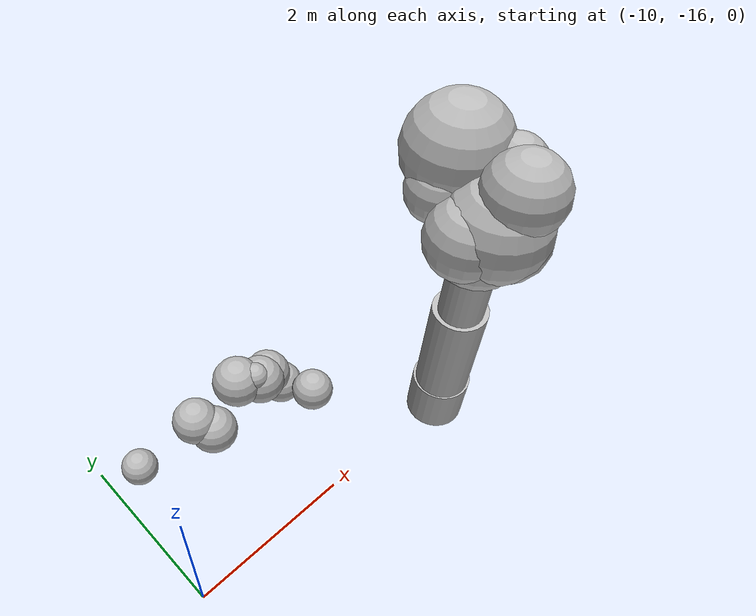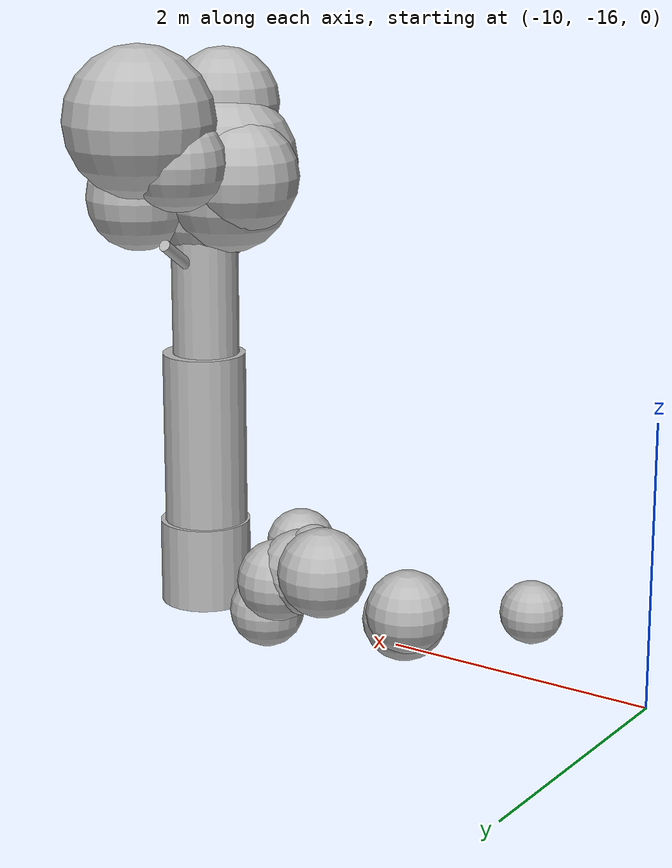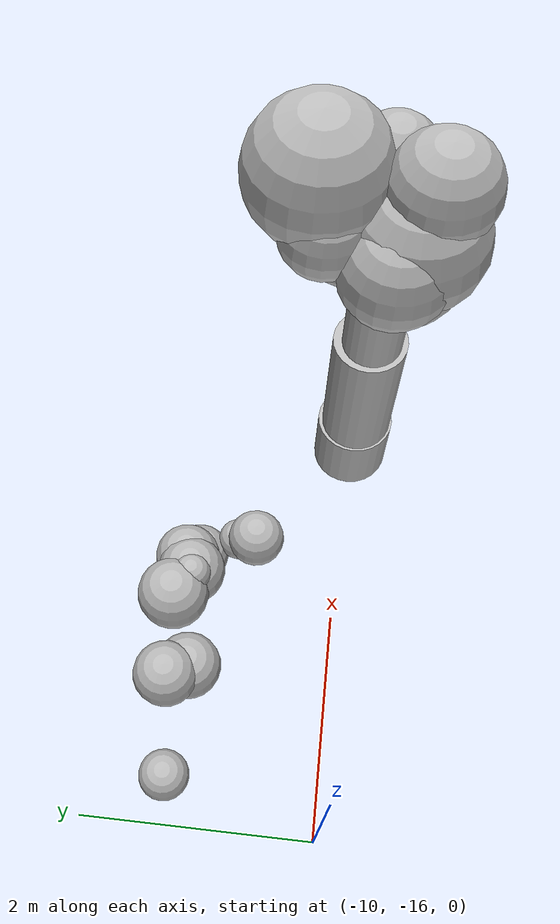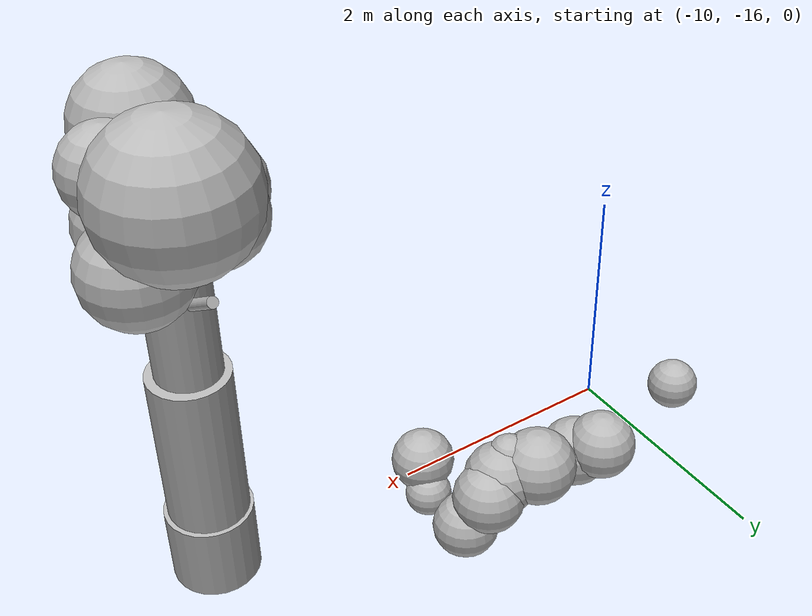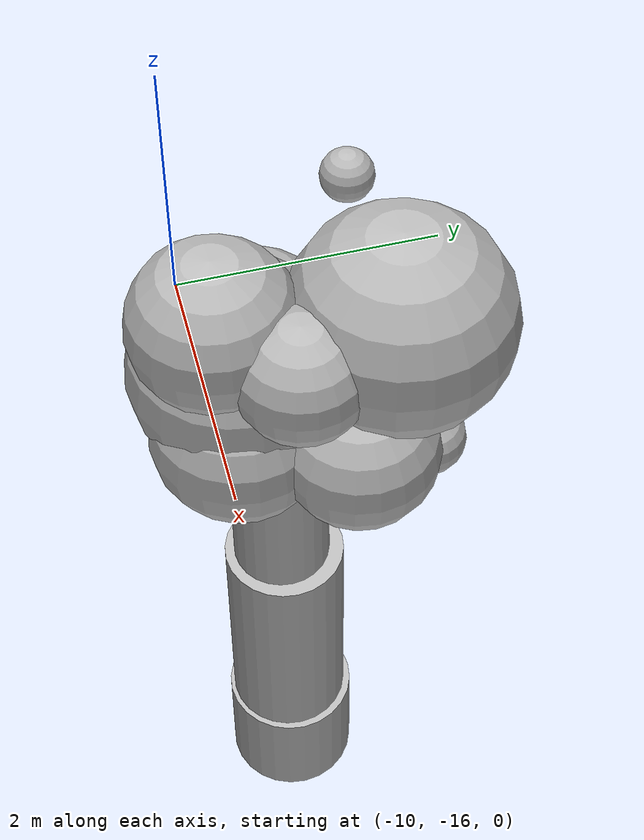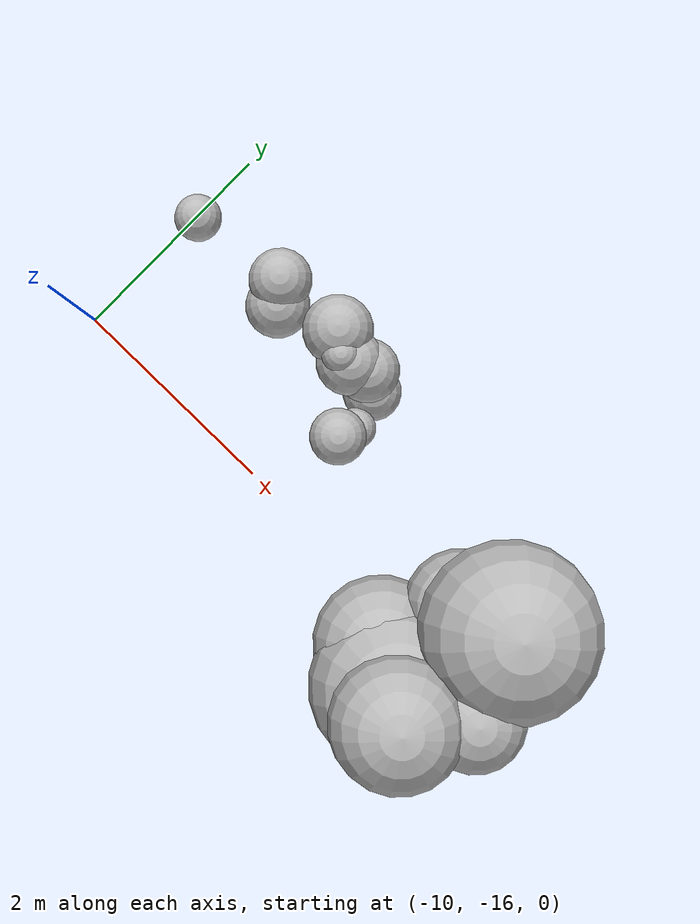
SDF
<sdf version="1.6">
 <world name="default">
  <model name="bush_9">
   <static>true</static>
   <pose>-6.2213 -16.0436 0 0 0 0</pose>
   <link name="trunk">
    <pose>0 0 1.5000 0 0 0</pose>
    <collision name="trunk_c">
     <geometry><cylinder><radius>0.3500</radius><length>3.0000</length></cylinder></geometry>
    </collision>
   </link>
   <link name="trunk_v0">
    <pose>-0.0011 -0.0010 0.3100 0 0 0</pose>
    <visual name="trunk_v0_v">
     <geometry><cylinder><radius>0.3448</radius><length>0.6448</length></cylinder></geometry>
     <material>
      <script>
       <uri>model://bushfire/materials/scripts</uri>
       <uri>model://bushfire/materials/textures</uri>
       <name>Bushfire/CharBark</name>
      </script>
     </material>
    </visual>
   </link>
   <link name="trunk_v1">
    <pose>-0.0077 -0.0074 1.2700 0 0 0</pose>
    <visual name="trunk_v1_v">
     <geometry><cylinder><radius>0.3150</radius><length>1.3520</length></cylinder></geometry>
     <material>
      <script>
       <uri>model://bushfire/materials/scripts</uri>
       <uri>model://bushfire/materials/textures</uri>
       <name>Bushfire/BarkStringy</name>
      </script>
     </material>
    </visual>
   </link>
   <link name="trunk_v2">
    <pose>-0.0194 -0.0188 2.4600 0 0 0</pose>
    <visual name="trunk_v2_v">
     <geometry><cylinder><radius>0.2520</radius><length>1.1232</length></cylinder></geometry>
     <material>
      <script>
       <uri>model://bushfire/materials/scripts</uri>
       <uri>model://bushfire/materials/textures</uri>
       <name>Bushfire/BarkStringy</name>
      </script>
     </material>
    </visual>
   </link>
   <link name="branch0">
    <pose>-0.0294 0.2502 2.6881 0 1.0077 1.6876</pose>
    <visual name="branch0_v">
     <geometry><cylinder><radius>0.0431</radius><length>0.5957</length></cylinder></geometry>
     <material>
      <script>
       <uri>model://bushfire/materials/scripts</uri>
       <uri>model://bushfire/materials/textures</uri>
       <name>Bushfire/BarkStringy</name>
      </script>
     </material>
    </visual>
   </link>
   <link name="branch1">
    <pose>-0.1557 -0.0891 2.7045 0 0.6567 3.6614</pose>
    <visual name="branch1_v">
     <geometry><cylinder><radius>0.0320</radius><length>0.5877</length></cylinder></geometry>
     <material>
      <script>
       <uri>model://bushfire/materials/scripts</uri>
       <uri>model://bushfire/materials/textures</uri>
       <name>Bushfire/BarkStringy</name>
      </script>
     </material>
    </visual>
   </link>
   <link name="branch2">
    <pose>0.0171 -0.1958 2.8913 0 0.6283 4.7997</pose>
    <visual name="branch2_v">
     <geometry><cylinder><radius>0.0427</radius><length>0.6688</length></cylinder></geometry>
     <material>
      <script>
       <uri>model://bushfire/materials/scripts</uri>
       <uri>model://bushfire/materials/textures</uri>
       <name>Bushfire/BarkStringy</name>
      </script>
     </material>
    </visual>
   </link>
   <link name="branch3">
    <pose>0.1507 0.0560 2.7982 0 0.6104 6.6388</pose>
    <visual name="branch3_v">
     <geometry><cylinder><radius>0.0397</radius><length>0.5611</length></cylinder></geometry>
     <material>
      <script>
       <uri>model://bushfire/materials/scripts</uri>
       <uri>model://bushfire/materials/textures</uri>
       <name>Bushfire/BarkStringy</name>
      </script>
     </material>
    </visual>
   </link>
   <link name="foliage0">
    <pose>0.2075 0.5361 3.6046 0 0 0</pose>
    <visual name="foliage0_v">
     <geometry><sphere><radius>0.3827</radius></sphere></geometry>
     <material>
      <script>
       <uri>model://bushfire/materials/scripts</uri>
       <uri>model://bushfire/materials/textures</uri>
       <name>Bushfire/Foliage1</name>
      </script>
     </material>
    </visual>
   </link>
   <link name="foliage1">
    <pose>-0.3396 -0.0533 3.3034 0 0 0</pose>
    <visual name="foliage1_v">
     <geometry><sphere><radius>0.4316</radius></sphere></geometry>
     <material>
      <script>
       <uri>model://bushfire/materials/scripts</uri>
       <uri>model://bushfire/materials/textures</uri>
       <name>Bushfire/Foliage0</name>
      </script>
     </material>
    </visual>
   </link>
   <link name="foliage2">
    <pose>0.0097 -0.1054 3.0300 0 0 0</pose>
    <visual name="foliage2_v">
     <geometry><sphere><radius>0.4086</radius></sphere></geometry>
     <material>
      <script>
       <uri>model://bushfire/materials/scripts</uri>
       <uri>model://bushfire/materials/textures</uri>
       <name>Bushfire/Foliage2</name>
      </script>
     </material>
    </visual>
   </link>
   <link name="foliage3">
    <pose>0.3081 0.0338 3.7165 0 0 0</pose>
    <visual name="foliage3_v">
     <geometry><sphere><radius>0.3260</radius></sphere></geometry>
     <material>
      <script>
       <uri>model://bushfire/materials/scripts</uri>
       <uri>model://bushfire/materials/textures</uri>
       <name>Bushfire/Foliage2</name>
      </script>
     </material>
    </visual>
   </link>
   <link name="foliage4">
    <pose>-0.1671 0.4657 3.4507 0 0 0</pose>
    <visual name="foliage4_v">
     <geometry><sphere><radius>0.3527</radius></sphere></geometry>
     <material>
      <script>
       <uri>model://bushfire/materials/scripts</uri>
       <uri>model://bushfire/materials/textures</uri>
       <name>Bushfire/Foliage1</name>
      </script>
     </material>
    </visual>
   </link>
   <link name="foliage5">
    <pose>-0.1023 -0.1757 3.3690 0 0 0</pose>
    <visual name="foliage5_v">
     <geometry><sphere><radius>0.5453</radius></sphere></geometry>
     <material>
      <script>
       <uri>model://bushfire/materials/scripts</uri>
       <uri>model://bushfire/materials/textures</uri>
       <name>Bushfire/Foliage2</name>
      </script>
     </material>
    </visual>
   </link>
   <link name="foliage6">
    <pose>0.0902 -0.2233 3.1250 0 0 0</pose>
    <visual name="foliage6_v">
     <geometry><sphere><radius>0.4403</radius></sphere></geometry>
     <material>
      <script>
       <uri>model://bushfire/materials/scripts</uri>
       <uri>model://bushfire/materials/textures</uri>
       <name>Bushfire/Foliage1</name>
      </script>
     </material>
    </visual>
   </link>
   <link name="foliage7">
    <pose>0.3355 0.3006 3.1349 0 0 0</pose>
    <visual name="foliage7_v">
     <geometry><sphere><radius>0.3941</radius></sphere></geometry>
     <material>
      <script>
       <uri>model://bushfire/materials/scripts</uri>
       <uri>model://bushfire/materials/textures</uri>
       <name>Bushfire/Foliage0</name>
      </script>
     </material>
    </visual>
   </link>
   <link name="foliage8">
    <pose>0.1091 0.5516 3.7346 0 0 0</pose>
    <visual name="foliage8_v">
     <geometry><sphere><radius>0.5568</radius></sphere></geometry>
     <material>
      <script>
       <uri>model://bushfire/materials/scripts</uri>
       <uri>model://bushfire/materials/textures</uri>
       <name>Bushfire/Foliage2</name>
      </script>
     </material>
    </visual>
   </link>
   <link name="foliage9">
    <pose>-0.1821 -0.1018 3.2007 0 0 0</pose>
    <visual name="foliage9_v">
     <geometry><sphere><radius>0.4803</radius></sphere></geometry>
     <material>
      <script>
       <uri>model://bushfire/materials/scripts</uri>
       <uri>model://bushfire/materials/textures</uri>
       <name>Bushfire/Foliage1</name>
      </script>
     </material>
    </visual>
   </link>
   <link name="foliage10">
    <pose>-0.0091 -0.2942 3.7985 0 0 0</pose>
    <visual name="foliage10_v">
     <geometry><sphere><radius>0.4166</radius></sphere></geometry>
     <material>
      <script>
       <uri>model://bushfire/materials/scripts</uri>
       <uri>model://bushfire/materials/textures</uri>
       <name>Bushfire/Foliage0</name>
      </script>
     </material>
    </visual>
   </link>
  </model>
  <model name="scrub">
   <static>true</static>
   <link name="scrub52_0">
    <pose>-9.7634 -14.7698 1.0364 0 0 0</pose>
    <visual name="scrub52_0_v">
     <geometry><sphere><radius>0.1966</radius></sphere></geometry>
     <material>
      <script>
       <uri>model://bushfire/materials/scripts</uri>
       <uri>model://bushfire/materials/textures</uri>
       <name>Bushfire/Foliage1</name>
      </script>
     </material>
    </visual>
   </link>
   <link name="scrub65_0">
    <pose>-8.9344 -14.6512 0.8967 0 0 0</pose>
    <visual name="scrub65_0_v">
     <geometry><sphere><radius>0.2687</radius></sphere></geometry>
     <material>
      <script>
       <uri>model://bushfire/materials/scripts</uri>
       <uri>model://bushfire/materials/textures</uri>
       <name>Bushfire/Foliage1</name>
      </script>
     </material>
    </visual>
   </link>
   <link name="scrub65_2">
    <pose>-8.8109 -14.8132 0.7709 0 0 0</pose>
    <visual name="scrub65_2_v">
     <geometry><sphere><radius>0.2757</radius></sphere></geometry>
     <material>
      <script>
       <uri>model://bushfire/materials/scripts</uri>
       <uri>model://bushfire/materials/textures</uri>
       <name>Bushfire/Foliage0</name>
      </script>
     </material>
    </visual>
   </link>
   <link name="scrub65_5">
    <pose>-8.1256 -14.7684 1.1258 0 0 0</pose>
    <visual name="scrub65_5_v">
     <geometry><sphere><radius>0.1629</radius></sphere></geometry>
     <material>
      <script>
       <uri>model://bushfire/materials/scripts</uri>
       <uri>model://bushfire/materials/textures</uri>
       <name>Bushfire/Foliage0</name>
      </script>
     </material>
    </visual>
   </link>
   <link name="scrub68_0">
    <pose>-7.8865 -14.6915 0.8819 0 0 0</pose>
    <visual name="scrub68_0_v">
     <geometry><sphere><radius>0.2739</radius></sphere></geometry>
     <material>
      <script>
       <uri>model://bushfire/materials/scripts</uri>
       <uri>model://bushfire/materials/textures</uri>
       <name>Bushfire/Foliage2</name>
      </script>
     </material>
    </visual>
   </link>
   <link name="scrub68_1">
    <pose>-7.7379 -14.7701 0.6190 0 0 0</pose>
    <visual name="scrub68_1_v">
     <geometry><sphere><radius>0.2531</radius></sphere></geometry>
     <material>
      <script>
       <uri>model://bushfire/materials/scripts</uri>
       <uri>model://bushfire/materials/textures</uri>
       <name>Bushfire/Foliage0</name>
      </script>
     </material>
    </visual>
   </link>
   <link name="scrub68_3">
    <pose>-8.0380 -14.7465 0.9542 0 0 0</pose>
    <visual name="scrub68_3_v">
     <geometry><sphere><radius>0.2856</radius></sphere></geometry>
     <material>
      <script>
       <uri>model://bushfire/materials/scripts</uri>
       <uri>model://bushfire/materials/textures</uri>
       <name>Bushfire/Foliage0</name>
      </script>
     </material>
    </visual>
   </link>
   <link name="scrub68_4">
    <pose>-8.2878 -14.6316 1.0321 0 0 0</pose>
    <visual name="scrub68_4_v">
     <geometry><sphere><radius>0.2965</radius></sphere></geometry>
     <material>
      <script>
       <uri>model://bushfire/materials/scripts</uri>
       <uri>model://bushfire/materials/textures</uri>
       <name>Bushfire/Foliage0</name>
      </script>
     </material>
    </visual>
   </link>
   <link name="scrub68_5">
    <pose>-7.6216 -15.1017 0.7480 0 0 0</pose>
    <visual name="scrub68_5_v">
     <geometry><sphere><radius>0.1756</radius></sphere></geometry>
     <material>
      <script>
       <uri>model://bushfire/materials/scripts</uri>
       <uri>model://bushfire/materials/textures</uri>
       <name>Bushfire/Foliage0</name>
      </script>
     </material>
    </visual>
   </link>
   <link name="scrub68_6">
    <pose>-7.6771 -15.2592 0.9416 0 0 0</pose>
    <visual name="scrub68_6_v">
     <geometry><sphere><radius>0.2382</radius></sphere></geometry>
     <material>
      <script>
       <uri>model://bushfire/materials/scripts</uri>
       <uri>model://bushfire/materials/textures</uri>
       <name>Bushfire/Foliage2</name>
      </script>
     </material>
    </visual>
   </link>
  </model>
 </world>
</sdf>
